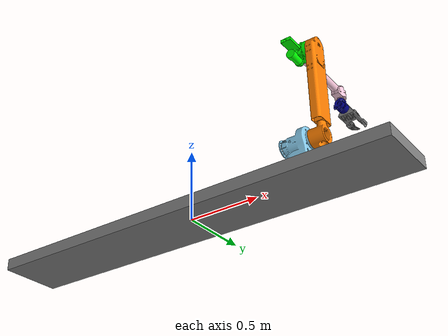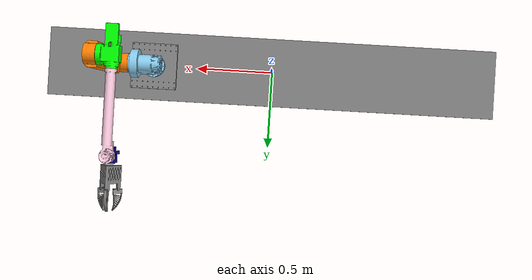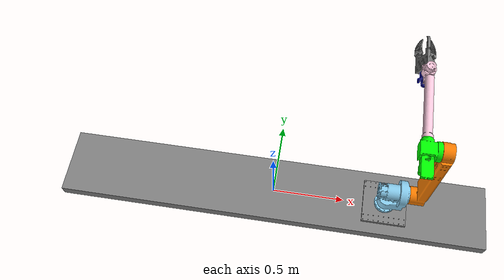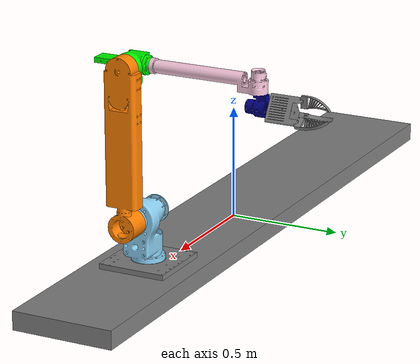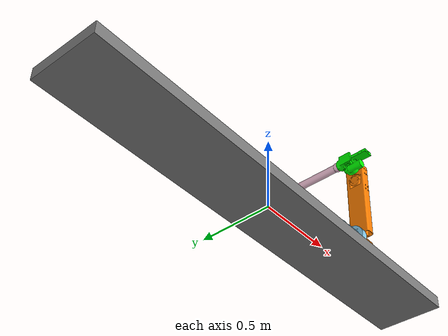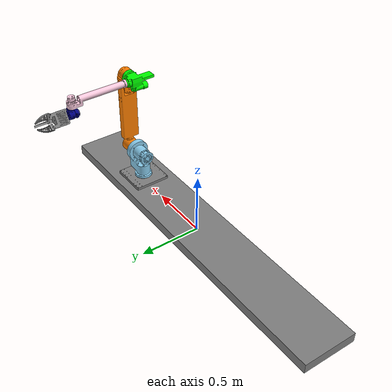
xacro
<?xml version="1.0"?>

<robot name="robot" xmlns:xacro="http://www.ros.org/wiki/xacro">

    <xacro:include filename="common_properties.xacro"/>
    <xacro:include filename="robot.xacro"/>
    <xacro:include filename="robot.ros2_control.xacro"/>
    <xacro:robot_ros2_control name="FakeSystem" initial_positions_file="unused"/>

</robot>

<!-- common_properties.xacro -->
<robot xmlns:xacro="http://www.ros.org/wiki/xacro">

    <material name="red">
        <color rgba="0.5 0.0 0.0 1.0"/>   <!-- Red color with full opacity -->
    </material>

    <material name="orange">
        <color rgba="1.0 0.5 0.0 1.0"/>   <!-- Orange color with full opacity -->
    </material>

    <material name="green">
        <color rgba="0.0 1.0 0.0 1.0"/>   <!-- Green color with full opacity -->
    </material>

    <material name="light_blue">
        <color rgba="0.54 0.81 0.94 1.0"/>   <!-- Light blue color with full opacity -->
    </material>

    <material name="blue">
        <color rgba="0.0 0.0 0.5 1.0"/>   <!-- Blue color with full opacity -->
    </material>

    <material name="pink">
        <color rgba="0.97 0.78 0.86 1.0"/>   <!-- Pink color with full opacity -->
    </material>

    <material name="grey">
        <color rgba="0.5 0.5 0.5 1.0"/>   <!-- Grey color with full opacity -->
    </material>

</robot>

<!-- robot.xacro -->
<robot name="robot" xmlns:xacro="http://www.ros.org/wiki/xacro">

    <!-- Robot links -->

    <link name="world_frame"/>  <!-- World frame link (no visual or collision geometry, serves as the root of the robot) -->

    <link name="linear_rail_link">
        <visual>
            <geometry>
                <box size="2.97 0.45 0.082"/>                                                                                <!-- Visual geometry for the linear rail (box shape) -->
            </geometry>
            <origin xyz="0 0 0" rpy="0 0 0"/>
            <material name="grey"/>
        </visual>
        <collision>
            <geometry>
                <box size="2.97 0.45 0.082"/>                                                                                <!-- Collision geometry for the linear rail (box shape) -->
            </geometry>
            <origin xyz="0 0 0" rpy="0 0 0"/>
        </collision>
    </link>

    <link name="base_link">
        <visual>
            <geometry>
                <mesh filename="package://robot_description/meshes/Base Link Visual.stl" scale="0.001 0.001 0.001"/>         <!-- Visual geometry for the base link (STL file) -->
            </geometry>
            <origin xyz="0 0 0" rpy="0 0 0"/>
            <material name="grey"/>
        </visual>
        <collision>
            <geometry>
                <mesh filename="package://robot_description/meshes/Base Link Collision.stl" scale="0.001 0.001 0.001"/>      <!-- Collision geometry for the base link (STL file) -->
            </geometry>
            <origin xyz="0 0 0" rpy="0 0 0"/>
        </collision>
    </link>

    <link name="link1">
        <visual>
            <geometry>
                <mesh filename="package://robot_description/meshes/Link 1 Visual.stl" scale="0.001 0.001 0.001"/>            <!-- Visual geometry for the link 1 (STL file) -->
            </geometry>
            <origin xyz="0 0 0" rpy="0 0 0"/>
            <material name="light_blue"/>
        </visual>
        <collision>
            <geometry>
                <mesh filename="package://robot_description/meshes/Link 1 Collision.stl" scale="0.001 0.001 0.001"/>         <!-- Collision geometry for the link 1 (STL file) -->
            </geometry>
            <origin xyz="0 0 0" rpy="0 0 0"/>
        </collision>
    </link>

    <link name="link2">
        <visual>
            <geometry>
                <mesh filename="package://robot_description/meshes/Link 2 Visual.stl" scale="0.001 0.001 0.001"/>            <!-- Visual geometry for the link 2 (STL file) -->
            </geometry>
            <origin xyz="0 0 0" rpy="0 0 0"/>
            <material name="orange"/>
        </visual>
        <collision>
            <geometry>
                <mesh filename="package://robot_description/meshes/Link 2 Collision.stl" scale="0.001 0.001 0.001"/>         <!-- Collision geometry for the link 2 (STL file) -->
            </geometry>
            <origin xyz="0 0 0" rpy="0 0 0"/>
        </collision>
    </link>

    <link name="link3">
        <visual>
            <geometry>
                <mesh filename="package://robot_description/meshes/Link 3 Visual.stl" scale="0.001 0.001 0.001"/>            <!-- Visual geometry for the link 3 (STL file) -->
            </geometry>
            <origin xyz="0 0 0" rpy="0 0 0"/>
            <material name="green"/>
        </visual>
        <collision>
            <geometry>
                <mesh filename="package://robot_description/meshes/Link 3 Collision.stl" scale="0.001 0.001 0.001"/>         <!-- Collision geometry for the link 3 (STL file) -->
            </geometry>
            <origin xyz="0 0 0" rpy="0 0 0"/>
        </collision>
    </link>

    <link name="link4">
        <visual>
            <geometry>
                <mesh filename="package://robot_description/meshes/Link 4 Visual.stl" scale="0.001 0.001 0.001"/>            <!-- Visual geometry for the link 4 (STL file) -->
            </geometry>
            <origin xyz="0 0 0" rpy="0 0 0"/>
            <material name="pink"/>
        </visual>
        <collision>
            <geometry>
                <mesh filename="package://robot_description/meshes/Link 4 Visual.stl" scale="0.001 0.001 0.001"/>
            </geometry>
            <origin xyz="0 0 0" rpy="0 0 0"/>
        </collision>
    </link>

    <link name="link5">
        <visual>
            <geometry>
                <mesh filename="package://robot_description/meshes/Link 5 Visual.stl" scale="0.001 0.001 0.001"/>            <!-- Visual geometry for the link 5 (STL file) -->
            </geometry>
            <origin xyz="0 0 0" rpy="0 0 0"/>
            <material name="blue"/>
        </visual>
        <collision>
            <geometry>
                <mesh filename="package://robot_description/meshes/Link 5 Visual.stl" scale="0.001 0.001 0.001"/>
            </geometry>
            <origin xyz="0 0 0" rpy="0 0 0"/>
        </collision>
    </link>

    <link name="link6">
        <visual>
            <geometry>
                <mesh filename="package://robot_description/meshes/End Effector Geometry.stl" scale="0.001 0.001 0.001"/>    <!-- Visual geometry for the end-effector link (STL file) -->
            </geometry>
            <origin xyz="0 0 0" rpy="0 0 0"/>
            <material name="grey"/>
        </visual>
        <collision>
            <geometry>
                <mesh filename="package://robot_description/meshes/End Effector Geometry.stl" scale="0.001 0.001 0.001"/>    <!-- Collision geometry for the end-effector link (STL file) -->
            </geometry>
            <origin xyz="0 0 0" rpy="0 0 0"/>
        </collision>
    </link>

    <link name="fin_link1">
        <visual>
            <geometry>
                <mesh filename="package://robot_description/meshes/Gripper fin.stl" scale="0.001 0.001 0.001"/>              <!-- Visual geometry for the fin link 1 (STL file) -->
            </geometry>
            <origin xyz="0 0 0" rpy="0 0 0"/>
            <material name="grey"/>
        </visual>
        <collision>
            <geometry>
                <mesh filename="package://robot_description/meshes/Gripper fin.stl" scale="0.001 0.001 0.001"/>
            </geometry>
            <origin xyz="0 0 0" rpy="0 0 0"/>
        </collision>
    </link>

    <link name="fin_link2">
        <visual>
            <geometry>
                <mesh filename="package://robot_description/meshes/Gripper fin.stl" scale="0.001 0.001 0.001"/>              <!-- Visual geometry for the fin link 1 (STL file) -->
            </geometry>
            <origin xyz="0 0 0" rpy="0 0 0"/>
            <material name="grey"/>
        </visual>
        <collision>
            <geometry>
                <mesh filename="package://robot_description/meshes/Gripper fin.stl" scale="0.001 0.001 0.001"/>
            </geometry>
            <origin xyz="0 0 0" rpy="0 0 0"/>
        </collision>
    </link>

    <link name="fin_link3">
        <visual>
            <geometry>
                <mesh filename="package://robot_description/meshes/Gripper fin.stl" scale="0.001 0.001 0.001"/>              <!-- Visual geometry for the fin link 1 (STL file) -->
            </geometry>
            <origin xyz="0 0 0" rpy="0 0 0"/>
            <material name="grey"/>
        </visual>
        <collision>
            <geometry>
                <mesh filename="package://robot_description/meshes/Gripper fin.stl" scale="0.001 0.001 0.001"/>
            </geometry>
            <origin xyz="0 0 0" rpy="0 0 0"/>
        </collision>
    </link>

    <!-- Robot joints -->

    <joint name="world_to_linear_rail" type="fixed">
        <parent link="world_frame"/>                                            <!-- Parent link for the fixed joint (world frame) -->
        <child link="linear_rail_link"/>                                        <!-- Child link for the fixed joint (linear rail) -->
        <origin xyz="0 0 0" rpy="0 0 0"/>                                       <!-- Origin of the joint (position and orientation of the linear rail in the world frame) -->
    </joint>

    <joint name="joint0" type="prismatic">
        <parent link="linear_rail_link"/>                                       <!-- Parent link for joint0 -->
        <child link="base_link"/>                                               <!-- Child link for joint0 -->
        <origin xyz="0.7825 0 0.0508" rpy="0 0 3.14159"/>                       <!-- Origin of the joint -->
        <axis xyz="1 0 0"/>                                                     <!-- Axis of translation for the prismatic joint (x-axis) -->
        <limit effort="100" velocity="0.5" lower="0" upper="1.565"/>            <!-- Joint limits are 0 = home end, 1.565 m = far end -->
    </joint>

    <joint name="joint1" type="revolute">
        <parent link="base_link"/>                                              <!-- Parent link for joint1 -->
        <child link="link1"/>                                                   <!-- Child link for joint1 -->
        <origin xyz="0 0 0" rpy="0 0 0"/>                                       <!-- Origin of the joint -->
        <axis xyz="0 0 1"/>                                                     <!-- Axis of rotation for the revolute joint (z-axis) -->
        <limit effort="37" velocity="0.4" lower="-3.14159" upper="3.14159"/>    <!-- Joint limits (effort, velocity, lower and upper angle limits in radians) -->
    </joint>

    <joint name="joint2" type="revolute">
        <parent link="link1"/>                                                  <!-- Parent link for joint2 -->
        <child link="link2"/>                                                   <!-- Child link for joint2 -->
        <origin xyz="-0.145 0 0.212599" rpy="0 0 0"/>                           <!-- Origin of the joint -->
        <axis xyz="1 0 0"/>                                                     <!-- Axis of rotation for the revolute joint (z-axis) -->
        <limit effort="144" velocity="1.96" lower="-1.57079" upper="1.57079"/>  <!-- Joint limits (effort, velocity, lower and upper angle limits in radians) -->
    </joint>

    <joint name="joint3" type="revolute">
        <parent link="link2"/>                                                  <!-- Parent link for joint3 -->
        <child link="link3"/>                                                   <!-- Child link for joint3 -->
        <origin xyz="-0.017125 0 0.663309" rpy="0 -1.57079 3.14195"/>           <!-- Origin of the joint -->
        <axis xyz="0 0 1"/>                                                     <!-- Axis of rotation for the revolute joint (z-axis) -->
        <limit effort="77" velocity="3.65" lower="-4.5" upper="1.5"/>           <!-- Joint limits (effort, velocity, lower and upper angle limits in radians) -->
    </joint>

    <joint name="joint4" type="revolute">
        <parent link="link3"/>                                                  <!-- Parent link for joint4 -->
        <child link="link4"/>                                                   <!-- Child link for joint4 -->
        <origin xyz="0 0.083285 0.08" rpy="-1.57079 0 0"/>                      <!-- Origin of the joint -->
        <axis xyz="0 0 1"/>                                                     <!-- Axis of rotation for the revolute joint (z-axis) -->
        <limit effort="25" velocity="2" lower="-3.14159" upper="3.14159"/>      <!-- Joint limits (effort, velocity, lower and upper angle limits in radians) -->
    </joint>

    <joint name="joint5" type="revolute">
        <parent link="link4"/>                                                  <!-- Parent link for joint5 -->
        <child link="link5"/>                                                   <!-- Child link for joint5 -->
        <origin xyz="-0.054 0 0.4645" rpy="0 1.57079 0"/>                       <!-- Origin of the joint -->
        <axis xyz="0 0 1"/>                                                     <!-- Axis of rotation for the revolute joint (z-axis) -->
        <limit effort="24" velocity="3.5" lower="-5" upper="5"/>                <!-- Joint limits (effort, velocity, lower and upper angle limits in radians) -->
    </joint>

    <joint name="joint6" type="revolute">
        <parent link="link5"/>                                                  <!-- Parent link for joint6 -->
        <child link="link6"/>                                                   <!-- Child link for joint6 -->
        <origin xyz="-0.057 0 -0.055033" rpy="0 -1.57079 0"/>                   <!-- Origin of the joint -->
        <axis xyz="0 0 1"/>                                                     <!-- Axis of rotation for the revolute joint (z-axis) -->
        <limit effort="24" velocity="3.5" lower="0" upper="2.0944"/>            <!-- Joint limits (effort, velocity, lower and upper angle limits in radians) -->
    </joint>

    <joint name="fin_joint1" type="revolute">
        <parent link="link6"/>                                                  <!-- Parent link for fin_joint1 -->
        <child link="fin_link1"/>                                               <!-- Child link for fin_joint1 -->
        <origin xyz="0.05052 0 0.1355" rpy="0 0 3.14159"/>                      <!-- Origin of the joint (hinge hole center at r=50.52mm, z=135.5mm) -->
        <axis xyz="0 1 0"/>                                                     <!-- Axis of rotation for the revolute joint (y-axis) -->
        <limit effort="10" velocity="1.0" lower="-0.25" upper="0.175"/>         <!-- Joint limits (effort, velocity, lower and upper angle limits in radians) -->
    </joint>

    <joint name="fin_joint2" type="revolute">
        <parent link="link6"/>                                                  <!-- Parent link for fin_joint2 -->
        <child link="fin_link2"/>                                               <!-- Child link for fin_joint2 -->
        <origin xyz="-0.02526 0.04375 0.1355" rpy="0 0 5.23599"/>               <!-- Origin of the joint (hinge hole center at r=50.52mm, 120°, z=135.5mm) -->
        <axis xyz="0 1 0"/>                                                     <!-- Axis of rotation for the revolute joint (y-axis) -->
        <limit effort="10" velocity="1.0" lower="-0.25" upper="0.175"/>         <!-- Joint limits (effort, velocity, lower and upper angle limits in radians) -->
        <mimic joint="fin_joint1" multiplier="1.0" offset="0.0"/>               <!-- Mimic joint definition to mirror the motion of fin_joint1 -->
    </joint>

    <joint name="fin_joint3" type="revolute">
        <parent link="link6"/>                                                  <!-- Parent link for fin_joint3 -->
        <child link="fin_link3"/>                                               <!-- Child link for fin_joint3 -->
        <origin xyz="-0.02526 -0.04375 0.1355" rpy="0 0 7.33039"/>              <!-- Origin of the joint (hinge hole center at r=50.52mm, 240°, z=135.5mm) -->
        <axis xyz="0 1 0"/>                                                     <!-- Axis of rotation for the revolute joint (y-axis) -->
        <limit effort="10" velocity="1.0" lower="-0.25" upper="0.175"/>         <!-- Joint limits (effort, velocity, lower and upper angle limits in radians) -->
        <mimic joint="fin_joint1" multiplier="1.0" offset="0.0"/>               <!-- Mimic joint definition to mirror the motion of fin_joint1 -->
    </joint>

</robot>
